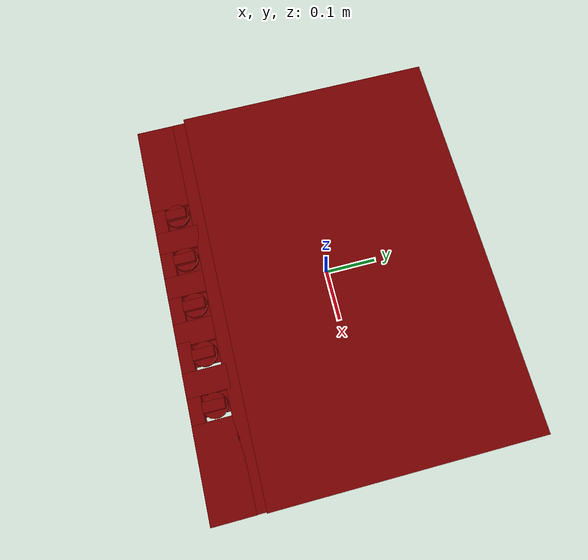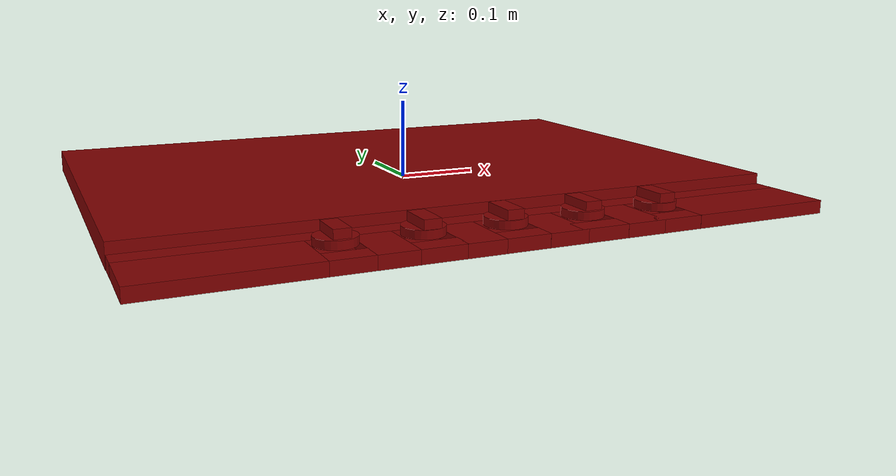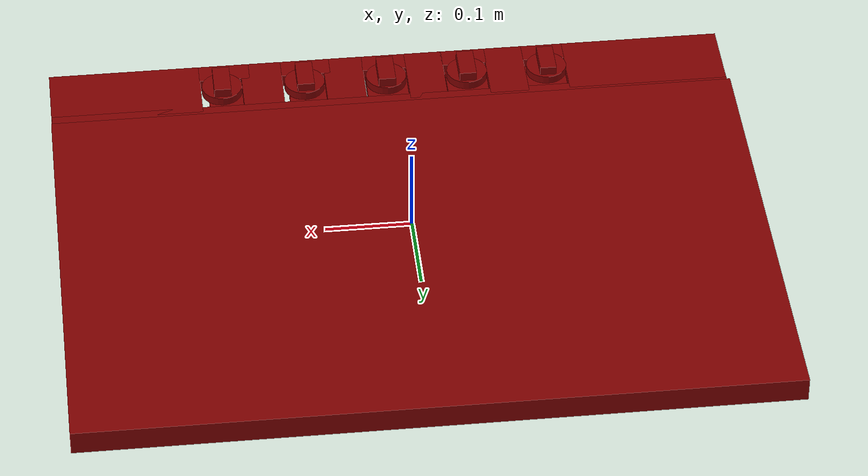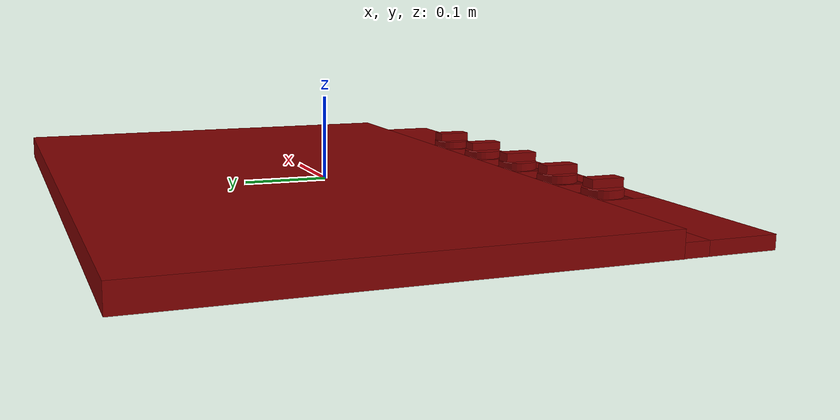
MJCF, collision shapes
<?xml version='1.0' encoding='UTF-8'?>
<mujoco model="model">
  <option timestep="0.002" gravity="0.0 0.0 -9.81"/>
  <compiler angle="radian"/>
  <asset>
    <mesh file="visuals/knob_center.obj" name="knob_center_vis"/>
    <mesh file="visuals/knob_front_left.obj" name="knob_front_left_vis"/>
    <mesh file="visuals/knob_front_right.obj" name="knob_front_right_vis"/>
    <mesh file="visuals/knob_rear_left.obj" name="knob_rear_left_vis"/>
    <mesh file="visuals/knob_rear_right.obj" name="knob_rear_right_vis"/>
    <mesh file="visuals/Body001.obj" name="Body001_vis"/>
    <texture file="visuals/T_BC001.png" name="Body001_material" type="2d"/>
    <material name="Body001_material" rgba="1 1 1 1.0" texture="Body001_material" shininess="0.1" specular="6"/>
    <texture file="visuals/T_BC001.png" name="knob_center_material" type="2d"/>
    <material name="knob_center_material" rgba="1 1 1 1.0" texture="knob_center_material" shininess="0.1" specular="6"/>
    <texture file="visuals/T_BC001.png" name="knob_front_left_material" type="2d"/>
    <material name="knob_front_left_material" rgba="1 1 1 1.0" texture="knob_front_left_material" shininess="0.1" specular="6"/>
    <texture file="visuals/T_BC001.png" name="knob_front_right_material" type="2d"/>
    <material name="knob_front_right_material" rgba="1 1 1 1.0" texture="knob_front_right_material" shininess="0.1" specular="6"/>
    <texture file="visuals/T_BC001.png" name="knob_rear_left_material" type="2d"/>
    <material name="knob_rear_left_material" rgba="1 1 1 1.0" texture="knob_rear_left_material" shininess="0.1" specular="6"/>
    <texture file="visuals/T_BC001.png" name="knob_rear_right_material" type="2d"/>
    <material name="knob_rear_right_material" rgba="1 1 1 1.0" texture="knob_rear_right_material" shininess="0.1" specular="6"/>
  </asset>
  <default>
    <default class="visual">
      <geom conaffinity="0" contype="0" group="1" type="mesh"/>
    </default>
    <default class="collision">
      <geom group="0" rgba="0.5 0 0 0.5"/>
    </default>
    <default class="spawn">
      <geom group="0" rgba="1 1 1 0.5" contype="0" conaffinity="0"/>
      <site group="0" rgba="1 1 1 0.5"/>
    </default>
    <default class="region">
      <geom group="1" conaffinity="0" contype="0" rgba="0 1 0 0"/>
    </default>
  </default>
  <worldbody>
    <body>
      <body name="object">
        <geom mesh="Body001_vis" type="mesh" solimp="0.998 0.998 0.001" solref="0.001 1" friction="0.95 0.3 0.1" class="visual" material="Body001_material"/>
        <geom class="collision" type="box" pos="0.0 0.052792005240917206 -0.004470415413379669" size="0.40665075182914734 0.2664267420768738 0.01453294139355421" quat="1.0 0.0 0.0 0.0"/>
        <geom class="collision" type="box" pos="-0.31084856390953064 -0.2760709524154663 -0.011071233078837395" size="0.09507956355810165 0.04250364750623703 0.007931571453809738" quat="1.0 0.0 0.0 0.0"/>
        <geom class="collision" type="box" pos="0.3159588873386383 -0.2760709524154663 -0.011071233078837395" size="0.09027756750583649 0.042503874748945236 0.007931571453809738" quat="1.0 0.0 0.0 0.0"/>
        <geom class="collision" type="box" pos="0.151401087641716 -0.2760709524154663 -0.01107123214751482" size="0.02432423084974289 0.0425044484436512 0.007931560277938843" quat="1.0 0.0 0.0 0.0"/>
        <geom class="collision" type="box" pos="0.051990680396556854 -0.2760709524154663 -0.01107123214751482" size="0.02357674576342106 0.042503949254751205 0.007931390777230263" quat="1.0 0.0 0.0 0.0"/>
        <geom class="collision" type="box" pos="-0.04605758562684059 -0.2760709524154663 -0.01107123214751482" size="0.022580014541745186 0.0425044484436512 0.007931560277938843" quat="1.0 0.0 0.0 0.0"/>
        <geom class="collision" type="box" pos="-0.143392875790596 -0.2760709524154663 -0.01107123214751482" size="0.02316378243267536 0.0425044484436512 0.007931560277938843" quat="1.0 0.0 0.0 0.0"/>
        <geom class="collision" type="box" pos="-0.1908503919839859 -0.3051688075065613 -0.01107123214751482" size="0.025494573637843132 0.013304587453603745 0.007931561209261417" quat="1.0 0.0 0.0 0.0"/>
        <geom class="collision" type="box" pos="-0.0944426879286766 -0.3051688075065613 -0.01107123214751482" size="0.026854244992136955 0.01330459862947464 0.007931561209261417" quat="1.0 0.0 0.0 0.0"/>
        <geom class="collision" type="box" pos="0.002340880688279867 -0.3051688075065613 -0.01107123214751482" size="0.02654094435274601 0.013304609805345535 0.007931561209261417" quat="1.0 0.0 0.0 0.0"/>
        <geom class="collision" type="box" pos="0.09796247631311417 -0.3051688075065613 -0.01107123214751482" size="0.02967436984181404 0.01330462098121643 0.007931561209261417" quat="1.0 0.0 0.0 0.0"/>
        <geom class="collision" type="box" pos="0.19612006843090057 -0.3051688075065613 -0.01107123214751482" size="0.030228879302740097 0.013304632157087326 0.007931561209261417" quat="1.0 0.0 0.0 0.0"/>
        <geom class="collision" type="box" pos="-0.00010931864380836487 -0.22484439611434937 -0.011071235872805119" size="0.40598130226135254 0.016867902129888535 0.00793161615729332" quat="1.0 0.0 0.0 0.0"/>
        <geom class="collision" type="box" pos="-0.19059942662715912 -0.2662595510482788 -0.01589604653418064" size="0.025160517543554306 0.024959363043308258 0.002985035302117467" quat="1.0 0.0 0.0 0.0"/>
        <geom class="collision" type="box" pos="-0.09604192525148392 -0.2662595510482788 -0.01589604653418064" size="0.025160517543554306 0.024959363043308258 0.0029850397258996964" quat="1.0 0.0 0.0 0.0"/>
        <geom class="collision" type="box" pos="0.0007231472991406918 -0.2662595510482788 -0.01589604653418064" size="0.025160517543554306 0.024959363043308258 0.0029850443825125694" quat="1.0 0.0 0.0 0.0"/>
        <geom class="collision" type="box" pos="0.09454479068517685 -0.2662595510482788 -0.01589604653418064" size="0.025160517543554306 0.024959363043308258 0.002985048806294799" quat="1.0 0.0 0.0 0.0"/>
        <geom class="collision" type="box" pos="0.1913098692893982 -0.2662595510482788 -0.01589604653418064" size="0.025160517543554306 0.024959363043308258 0.002985053462907672" quat="1.0 0.0 0.0 0.0"/>
        <body name="knob_center">
          <joint axis="0.0 0.0 1.0" pos="0.00398429436609149 -0.2669505178928375 0.003643471747636795" limited="true" name="knob_center_joint" range="0.0 3.141592653589793" type="hinge" damping="0.2" armature="0.01" frictionloss="1"/>
          <geom mesh="knob_center_vis" type="mesh" solimp="0.998 0.998 0.001" solref="0.001 1" friction="0.95 0.3 0.1" class="visual" material="knob_center_material"/>
          <geom class="collision" type="cylinder" pos="0.002909435424953699 -0.26711785793304443 0.0022059797775000334" size="0.024132415652275085 0.004998958203941584" quat="1.0 0.0 0.0 0.0" friction="100 0.5 0.01"/>
          <geom class="collision" type="box" pos="0.0032763085328042507 -0.26741015911102295 0.012395432218909264" size="0.010110489092767239 0.021235371008515358 0.006173144560307264" quat="1.0 0.0 0.0 0.0" name="knob_center_main" friction="100 0.5 0.01"/>
        </body>
        <body name="knob_front_left">
          <joint axis="0.0 0.0 1.0" pos="-0.19130390882492065 -0.2669505178928375 0.003643471747636795" limited="true" name="knob_front_left_joint" range="0.0 3.141592653589793" type="hinge" damping="0.2" armature="0.01" frictionloss="1"/>
          <geom mesh="knob_front_left_vis" type="mesh" solimp="0.998 0.998 0.001" solref="0.001 1" friction="0.95 0.3 0.1" class="visual" material="knob_front_left_material"/>
          <geom class="collision" type="cylinder" pos="-0.19124412536621094 -0.2673732340335846 0.0022335187532007694" size="0.02397717535495758 0.004874209873378277" quat="1.0 0.0 0.0 0.0" friction="100 0.5 0.01"/>
          <geom class="collision" type="box" pos="-0.19123807549476624 -0.2678348422050476 0.013128822669386864" size="0.009726778604090214 0.020429808646440506 0.005324434954673052" quat="1.0 0.0 0.0 0.0" name="knob_front_left_main" friction="100 0.5 0.01"/>
        </body>
        <body name="knob_front_right">
          <joint axis="0.0 0.0 1.0" pos="0.20131655037403107 -0.2669505178928375 0.003643471747636795" limited="true" name="knob_front_right_joint" range="0.0 3.141592653589793" type="hinge" damping="0.2" armature="0.01" frictionloss="1"/>
          <geom mesh="knob_front_right_vis" type="mesh" solimp="0.998 0.998 0.001" solref="0.001 1" friction="0.95 0.3 0.1" class="visual" material="knob_front_right_material"/>
          <geom class="collision" type="cylinder" pos="0.20061686635017395 -0.26711785793304443 0.0022972743026912212" size="0.024132415652275085 0.004873207770287991" quat="1.0 0.0 0.0 0.0" friction="100 0.5 0.01"/>
          <geom class="collision" type="box" pos="0.2007334679365158 -0.26778513193130493 0.012814171612262726" size="0.010110489092767239 0.021235371008515358 0.005524335894733667" quat="1.0 0.0 0.0 0.0" name="knob_front_right_main" friction="100 0.5 0.01"/>
        </body>
        <body name="knob_rear_left">
          <joint axis="0.0 0.0 1.0" pos="-0.09303737431764603 -0.2669505178928375 0.003643471747636795" limited="true" name="knob_rear_left_joint" range="0.0 3.141592653589793" type="hinge" damping="0.2" armature="0.01" frictionloss="1"/>
          <geom mesh="knob_rear_left_vis" type="mesh" solimp="0.998 0.998 0.001" solref="0.001 1" friction="0.95 0.3 0.1" class="visual" material="knob_rear_left_material"/>
          <geom class="collision" type="cylinder" pos="-0.09463334083557129 -0.26711785793304443 0.002315462101250887" size="0.024132415652275085 0.005001436918973923" quat="1.0 0.0 0.0 0.0" friction="100 0.5 0.01"/>
          <geom class="collision" type="box" pos="-0.09421432018280029 -0.26816004514694214 0.01281689666211605" size="0.010110489092767239 0.021235371008515358 0.005556535441428423" quat="1.0 0.0 0.0 0.0" name="knob_rear_left_main" friction="100 0.5 0.01"/>
        </body>
        <body name="knob_rear_right">
          <joint axis="0.0 0.0 1.0" pos="0.10140924900770187 -0.2669505178928375 0.003643471747636795" limited="true" name="knob_rear_right_joint" range="0.0 3.141592653589793" type="hinge" damping="0.2" armature="0.01" frictionloss="1"/>
          <geom mesh="knob_rear_right_vis" type="mesh" solimp="0.998 0.998 0.001" solref="0.001 1" friction="0.95 0.3 0.1" class="visual" material="knob_rear_right_material"/>
          <geom class="collision" type="cylinder" pos="0.10136689990758896 -0.26711785793304443 0.0021881682332605124" size="0.024132415652275085 0.004958075936883688" quat="1.0 0.0 0.0 0.0" friction="100 0.5 0.01"/>
          <geom class="collision" type="box" pos="0.10090254247188568 -0.26797258853912354 0.013226905837655067" size="0.010110489092767239 0.021234994754195213 0.005123273469507694" quat="1.0 0.0 0.0 0.0" name="knob_rear_right_main" friction="100 0.5 0.01"/>
        </body>
        <site type="cylinder" rgba="0.3 0.4 1 0.5" size="0.028648637235164642 0.004166699945926666" pos="-0.0005629124352708459 0.02398953214287758 -0.004879461135715246" name="burner_on_center"/>
        <site type="cylinder" rgba="0.3 0.4 1 0.5" size="0.03172028064727783 0.0030211014673113823" pos="-0.2492201030254364 -0.09618552774190903 -0.0032066928688436747" name="burner_on_front_left"/>
        <site type="cylinder" rgba="0.3 0.4 1 0.5" size="0.028645798563957214 0.0033160587772727013" pos="0.25080204010009766 -0.0924101322889328 -0.0035016494803130627" name="burner_on_front_right"/>
        <site type="cylinder" rgba="0.3 0.4 1 0.5" size="0.05701816827058792 0.00356303877197206" pos="0.249232217669487 0.1415102630853653 -0.002408033236861229" name="burner_on_rear_right"/>
        <site type="cylinder" rgba="0.3 0.4 1 0.5" size="0.0439448244869709 0.0043138316832482815" pos="-0.2494802325963974 0.14029407501220703 -0.0031588254496455193" name="burner_on_rear_left"/>
        <site type="cylinder" rgba="0.5 0 0 0" size="0.05701816827058792 4.999999873689376e-05" pos="0.249232217669487 0.1415102630853653 0.010119909420609474" name="burner_rear_right_place_site"/>
        <site type="cylinder" rgba="0.5 0 0 0" size="0.0439448319375515 4.999999873689376e-05" pos="-0.2494802623987198 0.14029408991336823 0.0101199084892869" name="burner_rear_left_place_site"/>
        <site type="cylinder" rgba="0.5 0 0 0" size="0.028645798563957214 4.999999873689376e-05" pos="0.25080204010009766 -0.0924101322889328 0.0101199084892869" name="burner_front_right_place_site"/>
        <site type="cylinder" rgba="0.5 0 0 0" size="0.03172028064727783 4.999999873689376e-05" pos="-0.2492201030254364 -0.09618552774190903 0.0101199084892869" name="burner_front_left_place_site"/>
        <site type="cylinder" rgba="0.5 0 0 0" size="0.02864864096045494 4.999999873689376e-05" pos="-0.0005629124352708459 0.02398953028023243 0.0101199084892869" name="burner_center_place_site"/>
        <geom class="region" name="reg_main" type="box" pos="0.0 0.0 -0.010710753500461578" size="0.4067403802871704 0.31952999329566956 0.008566917221993209"/>
      </body>
    </body>
  </worldbody>
  <actuator>
    <motor name="knob_center_joint_actuator" joint="knob_center_joint" gear="10"/>
    <motor name="knob_front_left_joint_actuator" joint="knob_front_left_joint" gear="10"/>
    <motor name="knob_front_right_joint_actuator" joint="knob_front_right_joint" gear="10"/>
    <motor name="knob_rear_left_joint_actuator" joint="knob_rear_left_joint" gear="10"/>
    <motor name="knob_rear_right_joint_actuator" joint="knob_rear_right_joint" gear="10"/>
  </actuator>
</mujoco>
